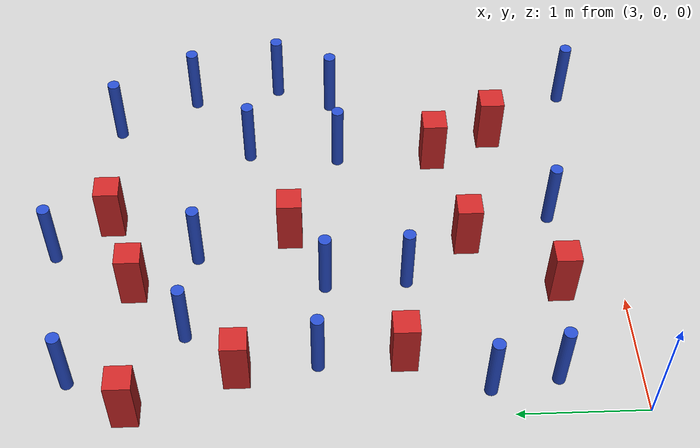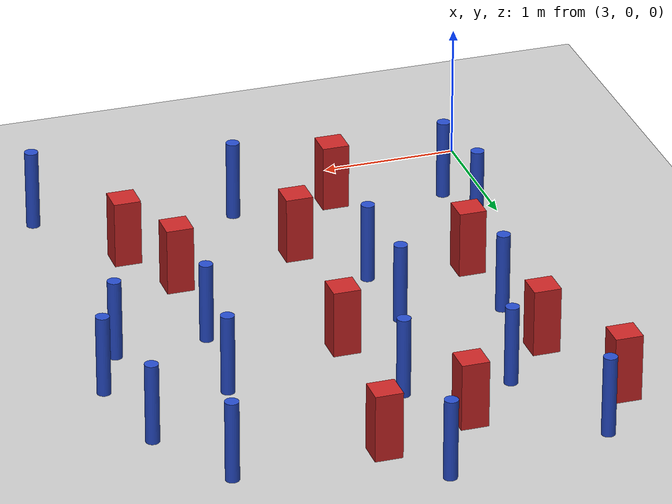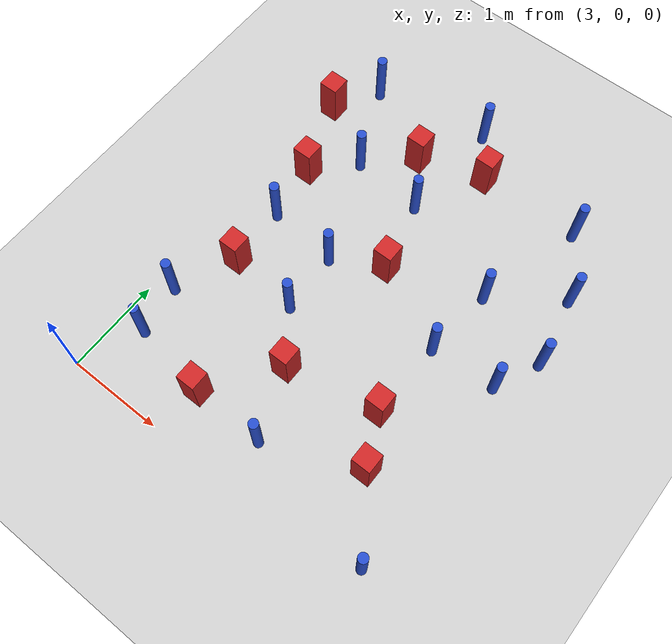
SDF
<sdf version="1.6">
 <world name="default">
  <model name="ground_plane">
   <static>1</static>
   <link name="link">
    <collision name="collision">
     <geometry><plane><normal>0 0 1</normal><size>100 100</size></plane></geometry>
     <surface><friction><ode><mu>100</mu><mu2>50</mu2></ode></friction></surface>
    </collision>
    <visual name="visual">
     <cast_shadows>0</cast_shadows>
     <geometry><plane><normal>0 0 1</normal><size>100 100</size></plane></geometry>
     <material>
      <ambient>1.0 1.0 1.0 1.0</ambient>
      <diffuse>0.8 0.8 0.8 1.0</diffuse>
      <specular>0.01 0.01 0.01 1.000000</specular>
     </material>
    </visual>
   </link>
  </model>
  <model name="pole_obstacle22">
   <static>true</static>
   <pose>3.21399484026 1.15496642094 2.88873142074e-08 -9.90536689395e-09 4.60219949e-07 -1.20965994953e-07</pose>
   <link name="link">
    <pose>0 0 0.3 0 -0 0</pose>
    <inertial>
     <mass>1</mass>
     <inertia><ixx>0.145833</ixx><ixy>0</ixy><ixz>0</ixz><iyy>0.145833</iyy><iyz>0</iyz><izz>0.125</izz></inertia>
    </inertial>
    <collision name="collision">
     <geometry><cylinder><radius>0.05</radius><length>.6</length></cylinder></geometry>
    </collision>
    <visual name="visual">
     <geometry><cylinder><radius>0.05</radius><length>.6</length></cylinder></geometry>
     <material>
      <script><name>Gazebo/Blue</name><uri>file://media/materials/scripts/gazebo.material</uri></script>
     </material>
    </visual>
   </link>
  </model>
  <model name="pole_obstacle23">
   <static>true</static>
   <pose>5.58787238519 2.20377139661 2.88873142074e-08 -9.90536690245e-09 4.6021994898e-07 -1.20965994966e-07</pose>
   <link name="link">
    <pose>0 0 0.3 0 -0 0</pose>
    <inertial>
     <mass>1</mass>
     <inertia><ixx>0.145833</ixx><ixy>0</ixy><ixz>0</ixz><iyy>0.145833</iyy><iyz>0</iyz><izz>0.125</izz></inertia>
    </inertial>
    <collision name="collision">
     <geometry><cylinder><radius>0.05</radius><length>.6</length></cylinder></geometry>
    </collision>
    <visual name="visual">
     <geometry><cylinder><radius>0.05</radius><length>.6</length></cylinder></geometry>
     <material>
      <script><name>Gazebo/Blue</name><uri>file://media/materials/scripts/gazebo.material</uri></script>
     </material>
    </visual>
   </link>
  </model>
  <model name="pole_obstacle26">
   <static>true</static>
   <pose>6.29894646236 0.176545857892 2.88873142074e-08 -9.90536689378e-09 4.60219949e-07 -1.20965994955e-07</pose>
   <link name="link">
    <pose>0 0 0.3 0 -0 0</pose>
    <inertial>
     <mass>1</mass>
     <inertia><ixx>0.145833</ixx><ixy>0</ixy><ixz>0</ixz><iyy>0.145833</iyy><iyz>0</iyz><izz>0.125</izz></inertia>
    </inertial>
    <collision name="collision">
     <geometry><cylinder><radius>0.05</radius><length>.6</length></cylinder></geometry>
    </collision>
    <visual name="visual">
     <geometry><cylinder><radius>0.05</radius><length>.6</length></cylinder></geometry>
     <material>
      <script><name>Gazebo/Blue</name><uri>file://media/materials/scripts/gazebo.material</uri></script>
     </material>
    </visual>
   </link>
  </model>
  <model name="pole_obstacle27">
   <static>true</static>
   <pose>5.97920845979 4.0949173007 2.88873142074e-08 -9.90536690842e-09 4.60219948965e-07 -1.20965994976e-07</pose>
   <link name="link">
    <pose>0 0 0.3 0 -0 0</pose>
    <inertial>
     <mass>1</mass>
     <inertia><ixx>0.145833</ixx><ixy>0</ixy><ixz>0</ixz><iyy>0.145833</iyy><iyz>0</iyz><izz>0.125</izz></inertia>
    </inertial>
    <collision name="collision">
     <geometry><cylinder><radius>0.05</radius><length>.6</length></cylinder></geometry>
    </collision>
    <visual name="visual">
     <geometry><cylinder><radius>0.05</radius><length>.6</length></cylinder></geometry>
     <material>
      <script><name>Gazebo/Blue</name><uri>file://media/materials/scripts/gazebo.material</uri></script>
     </material>
    </visual>
   </link>
  </model>
  <model name="square_post_obstacle29">
   <static>true</static>
   <pose>4.11304902808 0.503068344709 8.22691968438e-08 7.2212513382e-06 -7.54495500217e-07 2.29674213826e-05</pose>
   <link name="link">
    <pose>0 0 0.25 0 -0 0</pose>
    <inertial>
     <mass>100</mass>
     <inertia>
      <ixx>0.166667</ixx>
      <ixy>0</ixy>
      <ixz>0</ixz>
      <iyy>0.166667</iyy>
      <iyz>0</iyz>
      <izz>0.166667</izz>
     </inertia>
    </inertial>
    <collision name="collision"><geometry><box><size>.2 .2 .5</size></box></geometry></collision>
    <visual name="visual">
     <geometry><box><size>.2 .2 .5</size></box></geometry>
     <material>
      <script><name>Gazebo/Red</name><uri>file://media/materials/scripts/gazebo.material</uri></script>
     </material>
    </visual>
   </link>
  </model>
  <model name="pole_obstacle35">
   <static>true</static>
   <pose>6.47769904895 2.71118495779 2.88873142074e-08 -9.90536690245e-09 4.6021994898e-07 -1.20965994966e-07</pose>
   <link name="link">
    <pose>0 0 0.3 0 -0 0</pose>
    <inertial>
     <mass>1</mass>
     <inertia><ixx>0.145833</ixx><ixy>0</ixy><ixz>0</ixz><iyy>0.145833</iyy><iyz>0</iyz><izz>0.125</izz></inertia>
    </inertial>
    <collision name="collision">
     <geometry><cylinder><radius>0.05</radius><length>.6</length></cylinder></geometry>
    </collision>
    <visual name="visual">
     <geometry><cylinder><radius>0.05</radius><length>.6</length></cylinder></geometry>
     <material>
      <script><name>Gazebo/Blue</name><uri>file://media/materials/scripts/gazebo.material</uri></script>
     </material>
    </visual>
   </link>
  </model>
  <model name="square_post_obstacle33">
   <static>true</static>
   <pose>3.50157909778 1.78142558885 8.22691968438e-08 7.2212513382e-06 -7.54495500217e-07 2.29674213826e-05</pose>
   <link name="link">
    <pose>0 0 0.25 0 -0 0</pose>
    <inertial>
     <mass>100</mass>
     <inertia>
      <ixx>0.166667</ixx>
      <ixy>0</ixy>
      <ixz>0</ixz>
      <iyy>0.166667</iyy>
      <iyz>0</iyz>
      <izz>0.166667</izz>
     </inertia>
    </inertial>
    <collision name="collision"><geometry><box><size>.2 .2 .5</size></box></geometry></collision>
    <visual name="visual">
     <geometry><box><size>.2 .2 .5</size></box></geometry>
     <material>
      <script><name>Gazebo/Red</name><uri>file://media/materials/scripts/gazebo.material</uri></script>
     </material>
    </visual>
   </link>
  </model>
  <model name="pole_obstacle47">
   <static>true</static>
   <pose>3.29350040887 0.637676185694 2.88873142074e-08 -9.90536689285e-09 4.60219949002e-07 -1.20965994953e-07</pose>
   <link name="link">
    <pose>0 0 0.3 0 -0 0</pose>
    <inertial>
     <mass>1</mass>
     <inertia><ixx>0.145833</ixx><ixy>0</ixy><ixz>0</ixz><iyy>0.145833</iyy><iyz>0</iyz><izz>0.125</izz></inertia>
    </inertial>
    <collision name="collision">
     <geometry><cylinder><radius>0.05</radius><length>.6</length></cylinder></geometry>
    </collision>
    <visual name="visual">
     <geometry><cylinder><radius>0.05</radius><length>.6</length></cylinder></geometry>
     <material>
      <script><name>Gazebo/Blue</name><uri>file://media/materials/scripts/gazebo.material</uri></script>
     </material>
    </visual>
   </link>
  </model>
  <model name="square_post_obstacle40">
   <static>true</static>
   <pose>5.56325435731 1.38980676724 8.22691968438e-08 7.2212513382e-06 -7.54495500217e-07 2.29674213826e-05</pose>
   <link name="link">
    <pose>0 0 0.25 0 -0 0</pose>
    <inertial>
     <mass>100</mass>
     <inertia>
      <ixx>0.166667</ixx>
      <ixy>0</ixy>
      <ixz>0</ixz>
      <iyy>0.166667</iyy>
      <iyz>0</iyz>
      <izz>0.166667</izz>
     </inertia>
    </inertial>
    <collision name="collision"><geometry><box><size>.2 .2 .5</size></box></geometry></collision>
    <visual name="visual">
     <geometry><box><size>.2 .2 .5</size></box></geometry>
     <material>
      <script><name>Gazebo/Red</name><uri>file://media/materials/scripts/gazebo.material</uri></script>
     </material>
    </visual>
   </link>
  </model>
  <model name="square_post_obstacle76">
   <static>true</static>
   <pose>4.72191383876 2.62196088454 8.22691968438e-08 7.2212513382e-06 -7.54495500217e-07 2.29674213826e-05</pose>
   <link name="link">
    <pose>0 0 0.25 0 -0 0</pose>
    <inertial>
     <mass>100</mass>
     <inertia>
      <ixx>0.166667</ixx>
      <ixy>0</ixy>
      <ixz>0</ixz>
      <iyy>0.166667</iyy>
      <iyz>0</iyz>
      <izz>0.166667</izz>
     </inertia>
    </inertial>
    <collision name="collision"><geometry><box><size>.2 .2 .5</size></box></geometry></collision>
    <visual name="visual">
     <geometry><box><size>.2 .2 .5</size></box></geometry>
     <material>
      <script><name>Gazebo/Red</name><uri>file://media/materials/scripts/gazebo.material</uri></script>
     </material>
    </visual>
   </link>
  </model>
  <model name="square_post_obstacle87">
   <static>true</static>
   <pose>4.90389879643 4.07535572147 8.22691968438e-08 7.22125133819e-06 -7.54495500217e-07 2.29674213826e-05</pose>
   <link name="link">
    <pose>0 0 0.25 0 -0 0</pose>
    <inertial>
     <mass>100</mass>
     <inertia>
      <ixx>0.166667</ixx>
      <ixy>0</ixy>
      <ixz>0</ixz>
      <iyy>0.166667</iyy>
      <iyz>0</iyz>
      <izz>0.166667</izz>
     </inertia>
    </inertial>
    <collision name="collision"><geometry><box><size>.2 .2 .5</size></box></geometry></collision>
    <visual name="visual">
     <geometry><box><size>.2 .2 .5</size></box></geometry>
     <material>
      <script><name>Gazebo/Red</name><uri>file://media/materials/scripts/gazebo.material</uri></script>
     </material>
    </visual>
   </link>
  </model>
  <model name="pole_obstacle97">
   <static>true</static>
   <pose>3.38027347681 4.29982518309 2.88873142074e-08 -9.90536689859e-09 4.60219948989e-07 -1.20965994961e-07</pose>
   <link name="link">
    <pose>0 0 0.3 0 -0 0</pose>
    <inertial>
     <mass>1</mass>
     <inertia><ixx>0.145833</ixx><ixy>0</ixy><ixz>0</ixz><iyy>0.145833</iyy><iyz>0</iyz><izz>0.125</izz></inertia>
    </inertial>
    <collision name="collision">
     <geometry><cylinder><radius>0.05</radius><length>.6</length></cylinder></geometry>
    </collision>
    <visual name="visual">
     <geometry><cylinder><radius>0.05</radius><length>.6</length></cylinder></geometry>
     <material>
      <script><name>Gazebo/Blue</name><uri>file://media/materials/scripts/gazebo.material</uri></script>
     </material>
    </visual>
   </link>
  </model>
  <model name="pole_obstacle103">
   <static>true</static>
   <pose>3.76972896377 3.43940672014 2.88873142074e-08 -9.90536690232e-09 4.6021994898e-07 -1.20965994968e-07</pose>
   <link name="link">
    <pose>0 0 0.3 0 -0 0</pose>
    <inertial>
     <mass>1</mass>
     <inertia><ixx>0.145833</ixx><ixy>0</ixy><ixz>0</ixz><iyy>0.145833</iyy><iyz>0</iyz><izz>0.125</izz></inertia>
    </inertial>
    <collision name="collision">
     <geometry><cylinder><radius>0.05</radius><length>.6</length></cylinder></geometry>
    </collision>
    <visual name="visual">
     <geometry><cylinder><radius>0.05</radius><length>.6</length></cylinder></geometry>
     <material>
      <script><name>Gazebo/Blue</name><uri>file://media/materials/scripts/gazebo.material</uri></script>
     </material>
    </visual>
   </link>
  </model>
  <model name="square_post_obstacle98">
   <static>true</static>
   <pose>3.09831291459 3.83531556448 8.22691968438e-08 7.2212513382e-06 -7.54495500217e-07 2.29674213826e-05</pose>
   <link name="link">
    <pose>0 0 0.25 0 -0 0</pose>
    <inertial>
     <mass>100</mass>
     <inertia>
      <ixx>0.166667</ixx>
      <ixy>0</ixy>
      <ixz>0</ixz>
      <iyy>0.166667</iyy>
      <iyz>0</iyz>
      <izz>0.166667</izz>
     </inertia>
    </inertial>
    <collision name="collision"><geometry><box><size>.2 .2 .5</size></box></geometry></collision>
    <visual name="visual">
     <geometry><box><size>.2 .2 .5</size></box></geometry>
     <material>
      <script><name>Gazebo/Red</name><uri>file://media/materials/scripts/gazebo.material</uri></script>
     </material>
    </visual>
   </link>
  </model>
  <model name="pole_obstacle111">
   <static>true</static>
   <pose>3.47104968568 2.42869223765 2.88873142074e-08 -9.90536690232e-09 4.6021994898e-07 -1.20965994968e-07</pose>
   <link name="link">
    <pose>0 0 0.3 0 -0 0</pose>
    <inertial>
     <mass>1</mass>
     <inertia><ixx>0.145833</ixx><ixy>0</ixy><ixz>0</ixz><iyy>0.145833</iyy><iyz>0</iyz><izz>0.125</izz></inertia>
    </inertial>
    <collision name="collision">
     <geometry><cylinder><radius>0.05</radius><length>.6</length></cylinder></geometry>
    </collision>
    <visual name="visual">
     <geometry><cylinder><radius>0.05</radius><length>.6</length></cylinder></geometry>
     <material>
      <script><name>Gazebo/Blue</name><uri>file://media/materials/scripts/gazebo.material</uri></script>
     </material>
    </visual>
   </link>
  </model>
  <model name="square_post_obstacle118">
   <static>true</static>
   <pose>4.21424643116 3.85490608512 8.22691968438e-08 7.2212513382e-06 -7.54495500217e-07 2.29674213826e-05</pose>
   <link name="link">
    <pose>0 0 0.25 0 -0 0</pose>
    <inertial>
     <mass>100</mass>
     <inertia>
      <ixx>0.166667</ixx>
      <ixy>0</ixy>
      <ixz>0</ixz>
      <iyy>0.166667</iyy>
      <iyz>0</iyz>
      <izz>0.166667</izz>
     </inertia>
    </inertial>
    <collision name="collision"><geometry><box><size>.2 .2 .5</size></box></geometry></collision>
    <visual name="visual">
     <geometry><box><size>.2 .2 .5</size></box></geometry>
     <material>
      <script><name>Gazebo/Red</name><uri>file://media/materials/scripts/gazebo.material</uri></script>
     </material>
    </visual>
   </link>
  </model>
  <model name="pole_obstacle120">
   <static>true</static>
   <pose>6.34349754965 3.44615063653 2.88873142074e-08 -9.90536690245e-09 4.6021994898e-07 -1.20965994966e-07</pose>
   <link name="link">
    <pose>0 0 0.3 0 -0 0</pose>
    <inertial>
     <mass>1</mass>
     <inertia><ixx>0.145833</ixx><ixy>0</ixy><ixz>0</ixz><iyy>0.145833</iyy><iyz>0</iyz><izz>0.125</izz></inertia>
    </inertial>
    <collision name="collision">
     <geometry><cylinder><radius>0.05</radius><length>.6</length></cylinder></geometry>
    </collision>
    <visual name="visual">
     <geometry><cylinder><radius>0.05</radius><length>.6</length></cylinder></geometry>
     <material>
      <script><name>Gazebo/Blue</name><uri>file://media/materials/scripts/gazebo.material</uri></script>
     </material>
    </visual>
   </link>
  </model>
  <model name="pole_obstacle129">
   <static>true</static>
   <pose>4.20835709271 2.3515070209 2.88873142074e-08 -9.90536690245e-09 4.6021994898e-07 -1.20965994966e-07</pose>
   <link name="link">
    <pose>0 0 0.3 0 -0 0</pose>
    <inertial>
     <mass>1</mass>
     <inertia><ixx>0.145833</ixx><ixy>0</ixy><ixz>0</ixz><iyy>0.145833</iyy><iyz>0</iyz><izz>0.125</izz></inertia>
    </inertial>
    <collision name="collision">
     <geometry><cylinder><radius>0.05</radius><length>.6</length></cylinder></geometry>
    </collision>
    <visual name="visual">
     <geometry><cylinder><radius>0.05</radius><length>.6</length></cylinder></geometry>
     <material>
      <script><name>Gazebo/Blue</name><uri>file://media/materials/scripts/gazebo.material</uri></script>
     </material>
    </visual>
   </link>
  </model>
  <model name="pole_obstacle145">
   <static>true</static>
   <pose>4.23535641297 1.7058380939 2.88873142074e-08 -9.90536689445e-09 4.60219948999e-07 -1.20965994956e-07</pose>
   <link name="link">
    <pose>0 0 0.3 0 -0 0</pose>
    <inertial>
     <mass>1</mass>
     <inertia><ixx>0.145833</ixx><ixy>0</ixy><ixz>0</ixz><iyy>0.145833</iyy><iyz>0</iyz><izz>0.125</izz></inertia>
    </inertial>
    <collision name="collision">
     <geometry><cylinder><radius>0.05</radius><length>.6</length></cylinder></geometry>
    </collision>
    <visual name="visual">
     <geometry><cylinder><radius>0.05</radius><length>.6</length></cylinder></geometry>
     <material>
      <script><name>Gazebo/Blue</name><uri>file://media/materials/scripts/gazebo.material</uri></script>
     </material>
    </visual>
   </link>
  </model>
  <model name="pole_obstacle146">
   <static>true</static>
   <pose>4.52870947607 3.36757696967 2.88873142074e-08 -9.90536690245e-09 4.6021994898e-07 -1.20965994966e-07</pose>
   <link name="link">
    <pose>0 0 0.3 0 -0 0</pose>
    <inertial>
     <mass>1</mass>
     <inertia><ixx>0.145833</ixx><ixy>0</ixy><ixz>0</ixz><iyy>0.145833</iyy><iyz>0</iyz><izz>0.125</izz></inertia>
    </inertial>
    <collision name="collision">
     <geometry><cylinder><radius>0.05</radius><length>.6</length></cylinder></geometry>
    </collision>
    <visual name="visual">
     <geometry><cylinder><radius>0.05</radius><length>.6</length></cylinder></geometry>
     <material>
      <script><name>Gazebo/Blue</name><uri>file://media/materials/scripts/gazebo.material</uri></script>
     </material>
    </visual>
   </link>
  </model>
  <model name="pole_obstacle153">
   <static>true</static>
   <pose>4.86592372651 0.483757706199 2.88873142074e-08 -9.90536689483e-09 4.60219948998e-07 -1.20965994956e-07</pose>
   <link name="link">
    <pose>0 0 0.3 0 -0 0</pose>
    <inertial>
     <mass>1</mass>
     <inertia><ixx>0.145833</ixx><ixy>0</ixy><ixz>0</ixz><iyy>0.145833</iyy><iyz>0</iyz><izz>0.125</izz></inertia>
    </inertial>
    <collision name="collision">
     <geometry><cylinder><radius>0.05</radius><length>.6</length></cylinder></geometry>
    </collision>
    <visual name="visual">
     <geometry><cylinder><radius>0.05</radius><length>.6</length></cylinder></geometry>
     <material>
      <script><name>Gazebo/Blue</name><uri>file://media/materials/scripts/gazebo.material</uri></script>
     </material>
    </visual>
   </link>
  </model>
  <model name="pole_obstacle167">
   <static>true</static>
   <pose>6.26315812092 2.24867076121 2.88873142074e-08 -9.90536690245e-09 4.6021994898e-07 -1.20965994966e-07</pose>
   <link name="link">
    <pose>0 0 0.3 0 -0 0</pose>
    <inertial>
     <mass>1</mass>
     <inertia><ixx>0.145833</ixx><ixy>0</ixy><ixz>0</ixz><iyy>0.145833</iyy><iyz>0</iyz><izz>0.125</izz></inertia>
    </inertial>
    <collision name="collision">
     <geometry><cylinder><radius>0.05</radius><length>.6</length></cylinder></geometry>
    </collision>
    <visual name="visual">
     <geometry><cylinder><radius>0.05</radius><length>.6</length></cylinder></geometry>
     <material>
      <script><name>Gazebo/Blue</name><uri>file://media/materials/scripts/gazebo.material</uri></script>
     </material>
    </visual>
   </link>
  </model>
  <model name="square_post_obstacle179">
   <static>true</static>
   <pose>3.39604145987 3.03493028181 8.22691968438e-08 7.2212513382e-06 -7.54495500217e-07 2.29674213826e-05</pose>
   <link name="link">
    <pose>0 0 0.25 0 -0 0</pose>
    <inertial>
     <mass>100</mass>
     <inertia>
      <ixx>0.166667</ixx>
      <ixy>0</ixy>
      <ixz>0</ixz>
      <iyy>0.166667</iyy>
      <iyz>0</iyz>
      <izz>0.166667</izz>
     </inertia>
    </inertial>
    <collision name="collision"><geometry><box><size>.2 .2 .5</size></box></geometry></collision>
    <visual name="visual">
     <geometry><box><size>.2 .2 .5</size></box></geometry>
     <material>
      <script><name>Gazebo/Red</name><uri>file://media/materials/scripts/gazebo.material</uri></script>
     </material>
    </visual>
   </link>
  </model>
  <model name="pole_obstacle183">
   <static>true</static>
   <pose>5.66206864946 2.95802538333 2.88873142074e-08 -9.90536690245e-09 4.6021994898e-07 -1.20965994966e-07</pose>
   <link name="link">
    <pose>0 0 0.3 0 -0 0</pose>
    <inertial>
     <mass>1</mass>
     <inertia><ixx>0.145833</ixx><ixy>0</ixy><ixz>0</ixz><iyy>0.145833</iyy><iyz>0</iyz><izz>0.125</izz></inertia>
    </inertial>
    <collision name="collision">
     <geometry><cylinder><radius>0.05</radius><length>.6</length></cylinder></geometry>
    </collision>
    <visual name="visual">
     <geometry><cylinder><radius>0.05</radius><length>.6</length></cylinder></geometry>
     <material>
      <script><name>Gazebo/Blue</name><uri>file://media/materials/scripts/gazebo.material</uri></script>
     </material>
    </visual>
   </link>
  </model>
  <model name="pole_obstacle191">
   <static>true</static>
   <pose>4.58893908459 4.51831668577 2.88873142074e-08 -9.90536690842e-09 4.60219948965e-07 -1.20965994976e-07</pose>
   <link name="link">
    <pose>0 0 0.3 0 -0 0</pose>
    <inertial>
     <mass>1</mass>
     <inertia><ixx>0.145833</ixx><ixy>0</ixy><ixz>0</ixz><iyy>0.145833</iyy><iyz>0</iyz><izz>0.125</izz></inertia>
    </inertial>
    <collision name="collision">
     <geometry><cylinder><radius>0.05</radius><length>.6</length></cylinder></geometry>
    </collision>
    <visual name="visual">
     <geometry><cylinder><radius>0.05</radius><length>.6</length></cylinder></geometry>
     <material>
      <script><name>Gazebo/Blue</name><uri>file://media/materials/scripts/gazebo.material</uri></script>
     </material>
    </visual>
   </link>
  </model>
  <model name="square_post_obstacle207">
   <static>true</static>
   <pose>4.6136832823 1.19762485188 8.22691968438e-08 7.2212513382e-06 -7.54495500217e-07 2.29674213826e-05</pose>
   <link name="link">
    <pose>0 0 0.25 0 -0 0</pose>
    <inertial>
     <mass>100</mass>
     <inertia>
      <ixx>0.166667</ixx>
      <ixy>0</ixy>
      <ixz>0</ixz>
      <iyy>0.166667</iyy>
      <iyz>0</iyz>
      <izz>0.166667</izz>
     </inertia>
    </inertial>
    <collision name="collision"><geometry><box><size>.2 .2 .5</size></box></geometry></collision>
    <visual name="visual">
     <geometry><box><size>.2 .2 .5</size></box></geometry>
     <material>
      <script><name>Gazebo/Red</name><uri>file://media/materials/scripts/gazebo.material</uri></script>
     </material>
    </visual>
   </link>
  </model>
  <model name="square_post_obstacle217">
   <static>true</static>
   <pose>5.80533217172 0.880886938038 8.22691968438e-08 7.2212513382e-06 -7.54495500217e-07 2.29674213826e-05</pose>
   <link name="link">
    <pose>0 0 0.25 0 -0 0</pose>
    <inertial>
     <mass>100</mass>
     <inertia>
      <ixx>0.166667</ixx>
      <ixy>0</ixy>
      <ixz>0</ixz>
      <iyy>0.166667</iyy>
      <iyz>0</iyz>
      <izz>0.166667</izz>
     </inertia>
    </inertial>
    <collision name="collision"><geometry><box><size>.2 .2 .5</size></box></geometry></collision>
    <visual name="visual">
     <geometry><box><size>.2 .2 .5</size></box></geometry>
     <material>
      <script><name>Gazebo/Red</name><uri>file://media/materials/scripts/gazebo.material</uri></script>
     </material>
    </visual>
   </link>
  </model>
 </world>
</sdf>
